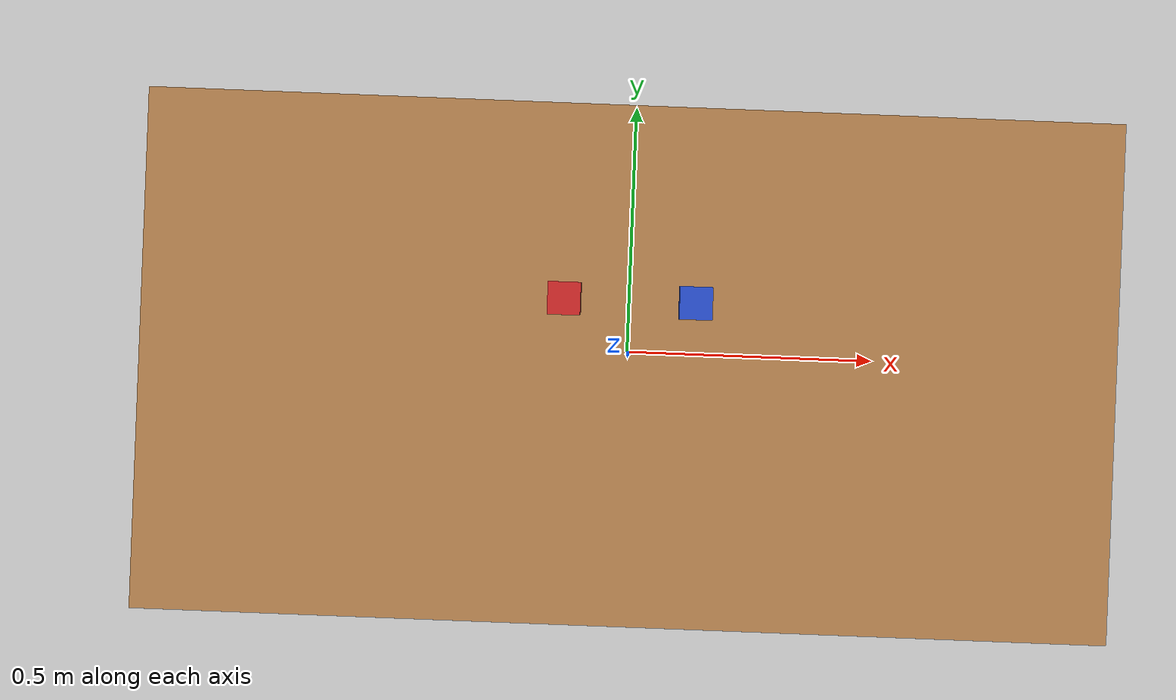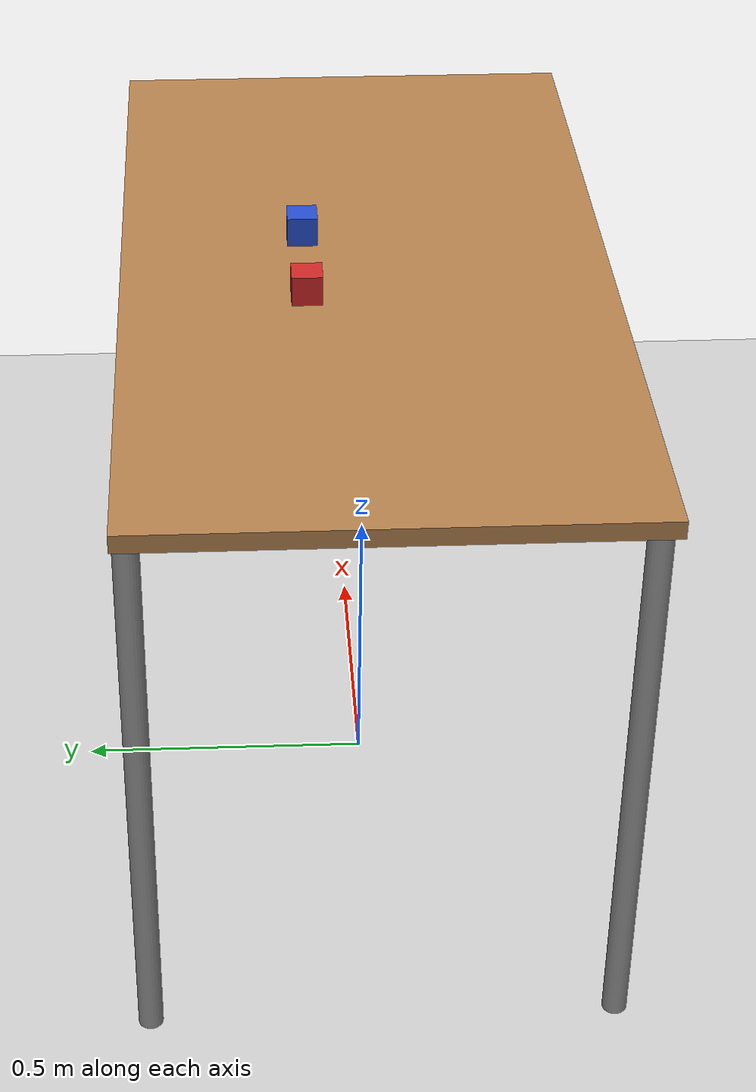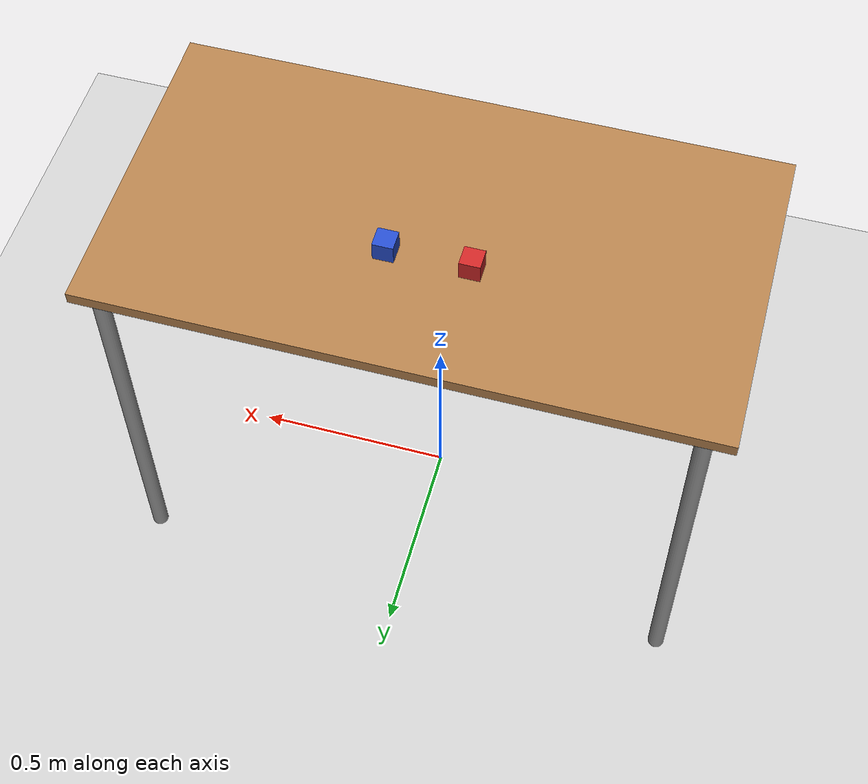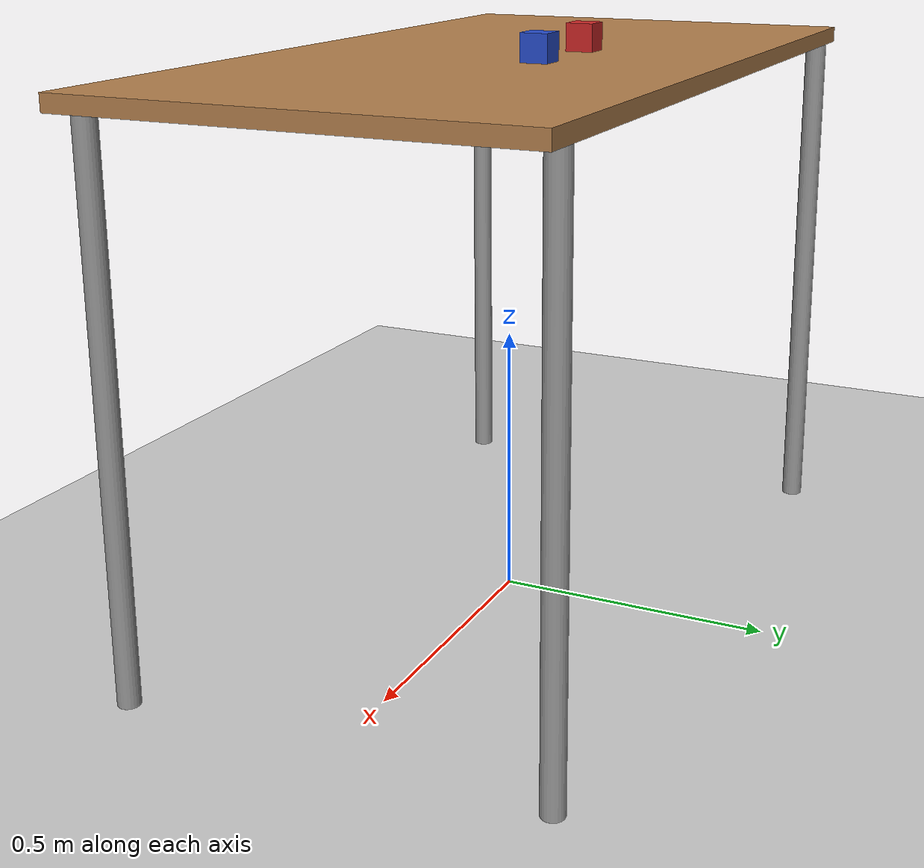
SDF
<sdf version='1.7'>
  <world name='default'>
    <light name='sun' type='directional'>
      <cast_shadows>1</cast_shadows>
      <pose>0 0 10 0 0 0</pose>
      <diffuse>0.8 0.8 0.8 1</diffuse>
      <specular>0.2 0.2 0.2 1</specular>
      <attenuation>
        <range>1000</range>
        <constant>0.9</constant>
        <linear>0.01</linear>
        <quadratic>0.001</quadratic>
      </attenuation>
      <direction>-0.5 0.1 -0.9</direction>
      <spot>
        <inner_angle>0</inner_angle>
        <outer_angle>0</outer_angle>
        <falloff>0</falloff>
      </spot>
    </light>

    <model name='ground_plane'>
      <static>1</static>
      <link name='link'>
        <collision name='collision'>
          <geometry>
            <plane>
              <normal>0 0 1</normal>
              <size>100 100</size>
            </plane>
          </geometry>
          <surface>
            <friction>
              <ode>
                <mu>100</mu>
                <mu2>50</mu2>
              </ode>
              <torsional>
                <ode/>
              </torsional>
            </friction>
            <contact>
              <ode/>
            </contact>
            <bounce/>
          </surface>
          <max_contacts>10</max_contacts>
        </collision>
        <visual name='visual'>
          <cast_shadows>0</cast_shadows>
          <geometry>
            <plane>
              <normal>0 0 1</normal>
              <size>100 100</size>
            </plane>
          </geometry>
          <material>
            <script>
              <uri>file://media/materials/scripts/gazebo.material</uri>
              <name>Gazebo/Grey</name>
            </script>
          </material>
        </visual>
        <self_collide>0</self_collide>
        <enable_wind>0</enable_wind>
        <kinematic>0</kinematic>
      </link>
    </model>

    <gravity>0 0 -9.8</gravity>
    <magnetic_field>6e-06 2.3e-05 -4.2e-05</magnetic_field>
    <atmosphere type='adiabatic'/>
    <physics type='ode'>
      <max_step_size>0.001</max_step_size>
      <real_time_factor>1</real_time_factor>
      <real_time_update_rate>1000</real_time_update_rate>
    </physics>
    <scene>
      <ambient>0.4 0.4 0.4 1</ambient>
      <background>0.7 0.7 0.7 1</background>
      <shadows>1</shadows>
    </scene>
    <audio>
      <device>default</device>
    </audio>
    <wind/>
    <spherical_coordinates>
      <surface_model>EARTH_WGS84</surface_model>
      <latitude_deg>0</latitude_deg>
      <longitude_deg>0</longitude_deg>
      <elevation>0</elevation>
      <heading_deg>0</heading_deg>
    </spherical_coordinates>

    <model name='table'>
      <static>1</static>
      <link name='table_link'>
        <collision name='surface'>
          <pose>0 0 1 0 0 0</pose>
          <geometry>
            <box>
              <size>1.8 0.8 0.03</size>
            </box>
          </geometry>
          <surface>
            <friction>
              <ode>
                <mu>0.6</mu>
                <mu2>0.6</mu2>
              </ode>
              <torsional>
                <ode/>
              </torsional>
            </friction>
            <contact>
              <ode/>
            </contact>
            <bounce/>
          </surface>
          <max_contacts>10</max_contacts>
        </collision>
        <visual name='visual1'>
          <pose>0 0 1 0 0 0</pose>
          <geometry>
            <box>
              <size>1.5 0.8 0.03</size>
            </box>
          </geometry>
          <material>
            <script>
              <uri>file://media/materials/scripts/gazebo.material</uri>
              <name>Gazebo/Wood</name>
            </script>
          </material>
        </visual>
        <collision name='front_left_leg'>
          <pose>0.68 0.38 0.5 0 0 0</pose>
          <geometry>
            <cylinder>
              <radius>0.02</radius>
              <length>1</length>
            </cylinder>
          </geometry>
          <max_contacts>10</max_contacts>
          <surface>
            <contact>
              <ode/>
            </contact>
            <bounce/>
            <friction>
              <torsional>
                <ode/>
              </torsional>
              <ode/>
            </friction>
          </surface>
        </collision>
        <visual name='front_left_leg_visual'>
          <pose>0.68 0.38 0.5 0 0 0</pose>
          <geometry>
            <cylinder>
              <radius>0.02</radius>
              <length>1</length>
            </cylinder>
          </geometry>
          <material>
            <script>
              <uri>file://media/materials/scripts/gazebo.material</uri>
              <name>Gazebo/Grey</name>
            </script>
          </material>
        </visual>
        <collision name='front_right_leg'>
          <pose>0.68 -0.38 0.5 0 0 0</pose>
          <geometry>
            <cylinder>
              <radius>0.02</radius>
              <length>1</length>
            </cylinder>
          </geometry>
          <max_contacts>10</max_contacts>
          <surface>
            <contact>
              <ode/>
            </contact>
            <bounce/>
            <friction>
              <torsional>
                <ode/>
              </torsional>
              <ode/>
            </friction>
          </surface>
        </collision>
        <visual name='front_right_leg_visual'>
          <pose>0.68 -0.38 0.5 0 0 0</pose>
          <geometry>
            <cylinder>
              <radius>0.02</radius>
              <length>1</length>
            </cylinder>
          </geometry>
          <material>
            <script>
              <uri>file://media/materials/scripts/gazebo.material</uri>
              <name>Gazebo/Grey</name>
            </script>
          </material>
        </visual>
        <collision name='back_right_leg'>
          <pose>-0.68 -0.38 0.5 0 0 0</pose>
          <geometry>
            <cylinder>
              <radius>0.02</radius>
              <length>1</length>
            </cylinder>
          </geometry>
          <max_contacts>10</max_contacts>
          <surface>
            <contact>
              <ode/>
            </contact>
            <bounce/>
            <friction>
              <torsional>
                <ode/>
              </torsional>
              <ode/>
            </friction>
          </surface>
        </collision>
        <visual name='back_right_leg_visual'>
          <pose>-0.68 -0.38 0.5 0 0 0</pose>
          <geometry>
            <cylinder>
              <radius>0.02</radius>
              <length>1</length>
            </cylinder>
          </geometry>
          <material>
            <script>
              <uri>file://media/materials/scripts/gazebo.material</uri>
              <name>Gazebo/Grey</name>
            </script>
          </material>
        </visual>
        <collision name='back_left_leg'>
          <pose>-0.68 0.38 0.5 0 0 0</pose>
          <geometry>
            <cylinder>
              <radius>0.02</radius>
              <length>1</length>
            </cylinder>
          </geometry>
          <max_contacts>10</max_contacts>
          <surface>
            <contact>
              <ode/>
            </contact>
            <bounce/>
            <friction>
              <torsional>
                <ode/>
              </torsional>
              <ode/>
            </friction>
          </surface>
        </collision>
        <visual name='back_left_leg_visual'>
          <pose>-0.68 0.38 0.5 0 0 0</pose>
          <geometry>
            <cylinder>
              <radius>0.02</radius>
              <length>1</length>
            </cylinder>
          </geometry>
          <material>
            <script>
              <uri>file://media/materials/scripts/gazebo.material</uri>
              <name>Gazebo/Grey</name>
            </script>
          </material>
        </visual>
        <self_collide>0</self_collide>
        <enable_wind>0</enable_wind>
        <kinematic>0</kinematic>
      </link>
      <pose>0 0 0 0 0 0</pose>
    </model>

    <gui fullscreen='0'>
      <camera name='user_camera'>
        <pose>2.4 -2.1 2.2 0 0.55 2.3</pose>
        <view_controller>orbit</view_controller>
        <projection_type>perspective</projection_type>
      </camera>
    </gui>

    <model name='red_box'>
      <link name='red_box_link'>
        <inertial>
          <mass>1</mass>
          <inertia>
            <ixx>0.166667</ixx>
            <ixy>0</ixy>
            <ixz>0</ixz>
            <iyy>0.166667</iyy>
            <iyz>0</iyz>
            <izz>0.166667</izz>
          </inertia>
          <pose>0 0 0 0 0 0</pose>
        </inertial>
        <self_collide>0</self_collide>
        <enable_wind>0</enable_wind>
        <kinematic>0</kinematic>
        <pose>0 0 0 0 0 0</pose>
        <gravity>1</gravity>
        <visual name='visual'>
          <geometry>
            <box>
              <size>0.05 0.05 0.05</size>
            </box>
          </geometry>
          <material>
            <script>
              <name>Gazebo/Red</name>
              <uri>file://media/materials/scripts/gazebo.material</uri>
            </script>
            <shader type='pixel'>
              <normal_map>__default__</normal_map>
            </shader>
            <ambient>1 0 0 1</ambient>
            <diffuse>1 0 0 1</diffuse>
            <specular>0.1 0.1 0.1 1</specular>
            <emissive>0 0 0 1</emissive>
          </material>
          <pose>0 0 0 0 0 0</pose>
          <transparency>0</transparency>
          <cast_shadows>1</cast_shadows>
        </visual>
        <collision name='collision'>
          <laser_retro>0</laser_retro>
          <max_contacts>10</max_contacts>
          <pose>0 0 0 0 0 0</pose>
          <geometry>
            <box>
              <size>0.05 0.05 0.05</size>
            </box>
          </geometry>
          <surface>
            <friction>
              <ode>
                <mu>1</mu>
                <mu2>1</mu2>
                <fdir1>0 0 0</fdir1>
                <slip1>0</slip1>
                <slip2>0</slip2>
              </ode>
              <torsional>
                <coefficient>1</coefficient>
                <patch_radius>0</patch_radius>
                <surface_radius>0</surface_radius>
                <use_patch_radius>1</use_patch_radius>
                <ode>
                  <slip>0</slip>
                </ode>
              </torsional>
            </friction>
            <bounce>
              <restitution_coefficient>0</restitution_coefficient>
              <threshold>1e+06</threshold>
            </bounce>
            <contact>
              <collide_without_contact>0</collide_without_contact>
              <collide_without_contact_bitmask>1</collide_without_contact_bitmask>
              <collide_bitmask>1</collide_bitmask>
              <ode>
                <soft_cfm>0</soft_cfm>
                <soft_erp>0.2</soft_erp>
                <kp>1e+13</kp>
                <kd>1</kd>
                <max_vel>0.01</max_vel>
                <min_depth>0</min_depth>
              </ode>
              <bullet>
                <split_impulse>1</split_impulse>
                <split_impulse_penetration_threshold>-0.01</split_impulse_penetration_threshold>
                <soft_cfm>0</soft_cfm>
                <soft_erp>0.2</soft_erp>
                <kp>1e+13</kp>
                <kd>1</kd>
              </bullet>
            </contact>
          </surface>
        </collision>
      </link>
      <static>0</static>
      <allow_auto_disable>1</allow_auto_disable>
      <pose>-0.1 0.1 1.04 0 0 0</pose>
    </model>

    <model name='blue_box'>
      <link name='blue_box_link'>
        <inertial>
          <mass>1</mass>
          <inertia>
            <ixx>0.166667</ixx>
            <ixy>0</ixy>
            <ixz>0</ixz>
            <iyy>0.166667</iyy>
            <iyz>0</iyz>
            <izz>0.166667</izz>
          </inertia>
          <pose>0 0 0 0 0 0</pose>
        </inertial>
        <self_collide>0</self_collide>
        <enable_wind>0</enable_wind>
        <kinematic>0</kinematic>
        <pose>0 0 0 0 0 0</pose>
        <gravity>1</gravity>
        <visual name='visual'>
          <geometry>
            <box>
              <size>0.05 0.05 0.05</size>
            </box>
          </geometry>
          <material>
            <script>
              <name>Gazebo/Blue</name>
              <uri>file://media/materials/scripts/gazebo.material</uri>
            </script>
            <shader type='pixel'>
              <normal_map>__default__</normal_map>
            </shader>
            <ambient>0 0 1 1</ambient>
            <diffuse>0 0 1 1</diffuse>
            <specular>0.1 0.1 0.1 1</specular>
            <emissive>0 0 0 1</emissive>
          </material>
          <pose>0 0 0 0 0 0</pose>
          <transparency>0</transparency>
          <cast_shadows>1</cast_shadows>
        </visual>
        <collision name='collision'>
          <laser_retro>0</laser_retro>
          <max_contacts>10</max_contacts>
          <pose>0 0 0 0 0 0</pose>
          <geometry>
            <box>
              <size>0.05 0.05 0.05</size>
            </box>
          </geometry>
          <surface>
            <friction>
              <ode>
                <mu>1</mu>
                <mu2>1</mu2>
                <fdir1>0 0 0</fdir1>
                <slip1>0</slip1>
                <slip2>0</slip2>
              </ode>
              <torsional>
                <coefficient>1</coefficient>
                <patch_radius>0</patch_radius>
                <surface_radius>0</surface_radius>
                <use_patch_radius>1</use_patch_radius>
                <ode>
                  <slip>0</slip>
                </ode>
              </torsional>
            </friction>
            <bounce>
              <restitution_coefficient>0</restitution_coefficient>
              <threshold>1e+06</threshold>
            </bounce>
            <contact>
              <collide_without_contact>0</collide_without_contact>
              <collide_without_contact_bitmask>1</collide_without_contact_bitmask>
              <collide_bitmask>1</collide_bitmask>
              <ode>
                <soft_cfm>0</soft_cfm>
                <soft_erp>0.2</soft_erp>
                <kp>1e+13</kp>
                <kd>1</kd>
                <max_vel>0.01</max_vel>
                <min_depth>0</min_depth>
              </ode>
              <bullet>
                <split_impulse>1</split_impulse>
                <split_impulse_penetration_threshold>-0.01</split_impulse_penetration_threshold>
                <soft_cfm>0</soft_cfm>
                <soft_erp>0.2</soft_erp>
                <kp>1e+13</kp>
                <kd>1</kd>
              </bullet>
            </contact>
          </surface>
        </collision>
      </link>
      <static>0</static>
      <allow_auto_disable>1</allow_auto_disable>
      <pose>0.1 0.1 1.04 0 0 0</pose>
    </model>
  </world>
</sdf>
